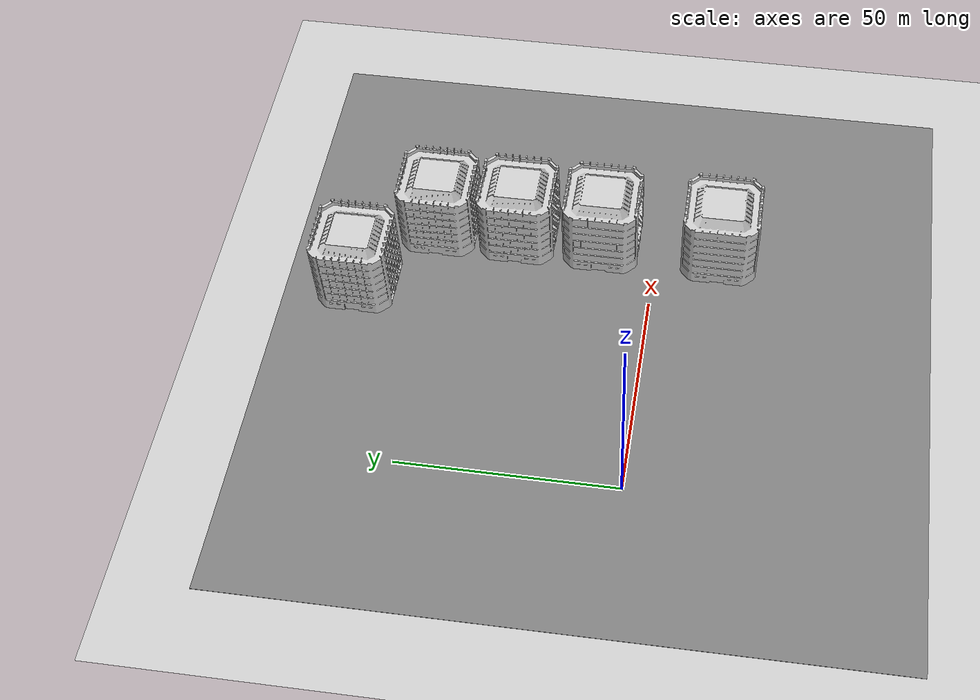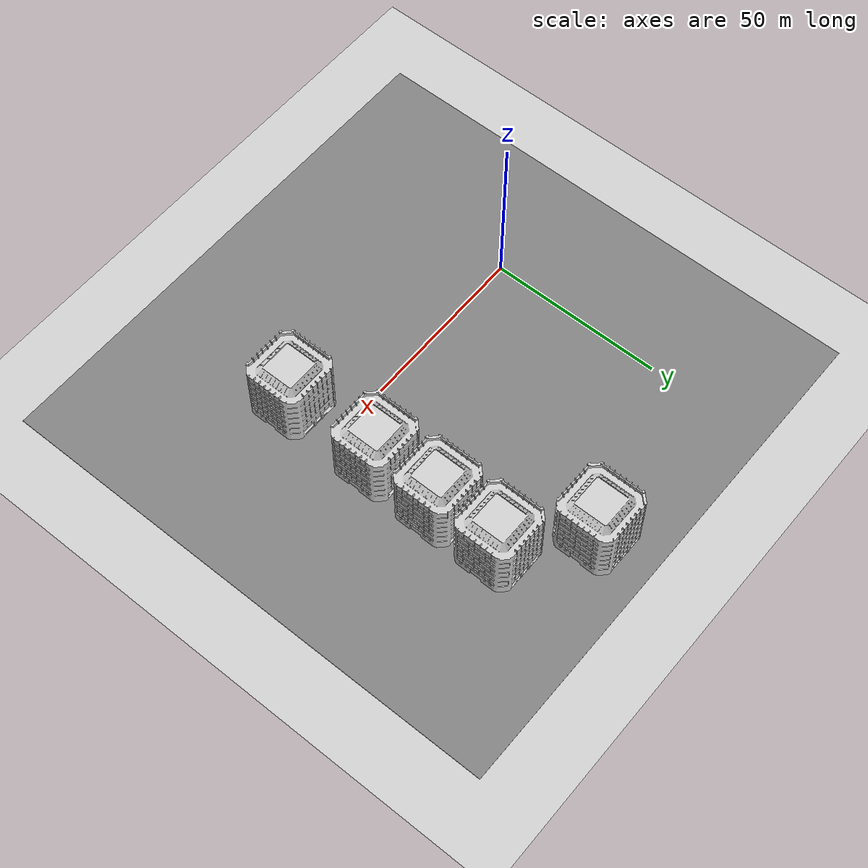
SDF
<sdf version="1.9">
 <world name="outdoor_village_3">
  <scene>
   <ambient>0.4 0.4 0.4 1</ambient>
   <background>0.7 0.7 0.7 1</background>
   <shadows>1</shadows>
   <sky><clouds><speed>1</speed></clouds></sky>
  </scene>
  <physics type="ode">
   <max_step_size>0.004</max_step_size>
   <real_time_factor>1</real_time_factor>
   <real_time_update_rate>250</real_time_update_rate>
  </physics>
  <magnetic_field>6e-06 2.3e-05 -4.2e-05</magnetic_field>
  <gravity>0 0 -9.8066</gravity>
  <light name="sun" type="directional">
   <pose>0 0 10 0 0 0</pose>
   <diffuse>0.8 0.8 0.8 1</diffuse>
   <specular>0.2 0.2 0.2 1</specular>
   <attenuation>
    <range>1000</range>
    <constant>0.9</constant>
    <linear>0.01</linear>
    <quadratic>0.001</quadratic>
   </attenuation>
   <direction>-0.5 0.1 -0.9</direction>
  </light>
  <model name="ground_plane">
   <static>true</static>
   <link name="link">
    <collision name="collision">
     <geometry><plane><normal>0 0 1</normal><size>500 500</size></plane></geometry>
    </collision>
    <visual name="visual">
     <geometry><plane><normal>0 0 1</normal><size>500 500</size></plane></geometry>
     <material>
      <ambient>0.8 0.8 0.8 1</ambient>
      <diffuse>0.8 0.8 0.8 1</diffuse>
      <specular>0.8 0.8 0.8 1</specular>
     </material>
    </visual>
   </link>
  </model>
  <model name="asphalt_plane">
   <static>1</static>
   <link name="link">
    <collision name="collision"><geometry><box><size>150 150 0.1</size></box></geometry></collision>
    <visual name="visual">
     <cast_shadows>0</cast_shadows>
     <geometry><box><size>150 150 0.1</size></box></geometry>
     <material>
      <ambient>0.5 0.5 0.5 1</ambient>
      <diffuse>0.5 0.5 0.5 1</diffuse>
      <specular>0.2 0.2 0.2 1</specular>
      <pbr><metal><albedo_map>model://asphalt_plane/materials/textures/tarmac.png</albedo_map></metal></pbr>
     </material>
    </visual>
   </link>
   <pose>40 10 0 0 0 0</pose>
  </model>
  <model name="Office Building 1">
   <static>1</static>
   <link name="link">
    <collision name="collision"><geometry><box><size>20 15 20</size></box></geometry></collision>
    <visual name="visual">
     <geometry><mesh><uri>model://office_building/meshes/office_building.dae</uri></mesh></geometry>
     <material>
      <ambient>0.7 0.7 0.7 1</ambient>
      <diffuse>0.8 0.8 0.8 1</diffuse>
      <specular>0.3 0.3 0.3 1</specular>
     </material>
    </visual>
   </link>
   <pose>48 68 0 0 0 0</pose>
  </model>
  <model name="Office Building 2">
   <static>1</static>
   <link name="link">
    <collision name="collision"><geometry><box><size>20 15 20</size></box></geometry></collision>
    <visual name="visual">
     <geometry><mesh><uri>model://office_building/meshes/office_building.dae</uri></mesh></geometry>
     <material>
      <ambient>0.7 0.7 0.7 1</ambient>
      <diffuse>0.8 0.8 0.8 1</diffuse>
      <specular>0.3 0.3 0.3 1</specular>
     </material>
    </visual>
   </link>
   <pose>67 52 0 0 0 0</pose>
  </model>
  <model name="Office Building 3">
   <static>1</static>
   <link name="link">
    <collision name="collision"><geometry><box><size>20 15 20</size></box></geometry></collision>
    <visual name="visual">
     <geometry><mesh><uri>model://office_building/meshes/office_building.dae</uri></mesh></geometry>
     <material>
      <ambient>0.7 0.7 0.7 1</ambient>
      <diffuse>0.8 0.8 0.8 1</diffuse>
      <specular>0.3 0.3 0.3 1</specular>
     </material>
    </visual>
   </link>
   <pose>67 33 0 0 0 0</pose>
  </model>
  <model name="Office Building 4">
   <static>1</static>
   <link name="link">
    <collision name="collision"><geometry><box><size>20 15 20</size></box></geometry></collision>
    <visual name="visual">
     <geometry><mesh><uri>model://office_building/meshes/office_building.dae</uri></mesh></geometry>
     <material>
      <ambient>0.7 0.7 0.7 1</ambient>
      <diffuse>0.8 0.8 0.8 1</diffuse>
      <specular>0.3 0.3 0.3 1</specular>
     </material>
    </visual>
   </link>
   <pose>67 13 0 0 0 0</pose>
  </model>
  <model name="Office Building 5">
   <static>1</static>
   <link name="link">
    <collision name="collision"><geometry><box><size>20 15 20</size></box></geometry></collision>
    <visual name="visual">
     <geometry><mesh><uri>model://office_building/meshes/office_building.dae</uri></mesh></geometry>
     <material>
      <ambient>0.7 0.7 0.7 1</ambient>
      <diffuse>0.8 0.8 0.8 1</diffuse>
      <specular>0.3 0.3 0.3 1</specular>
     </material>
    </visual>
   </link>
   <pose>67 -15 0 0 0 0</pose>
  </model>
  <spherical_coordinates>
   <surface_model>EARTH_WGS84</surface_model>
   <world_frame_orientation>ENU</world_frame_orientation>
   <latitude_deg>47.397971057728974</latitude_deg>
   <longitude_deg>8.546163739800146</longitude_deg>
   <elevation>0</elevation>
  </spherical_coordinates>
 </world>
</sdf>
